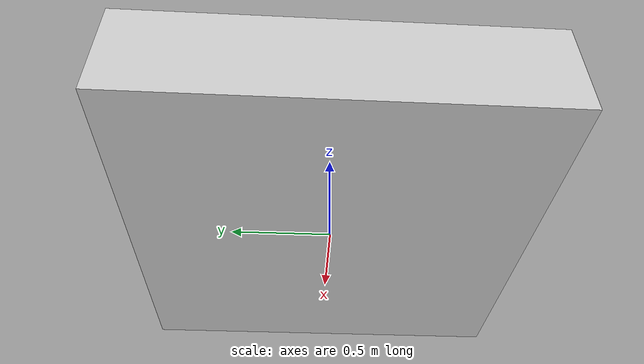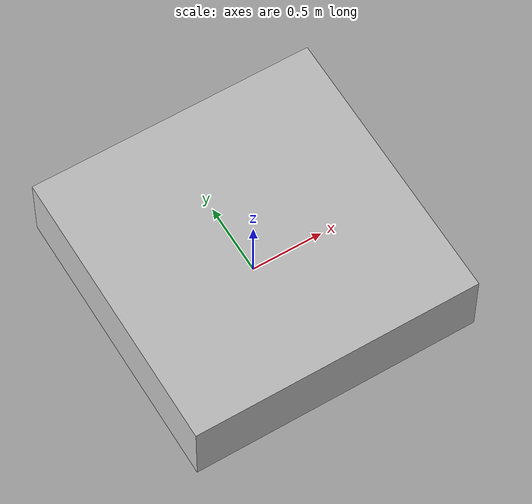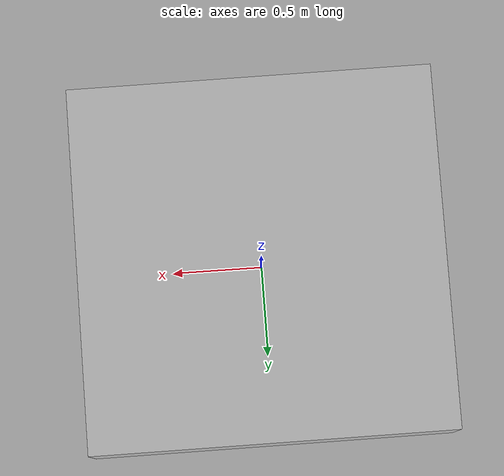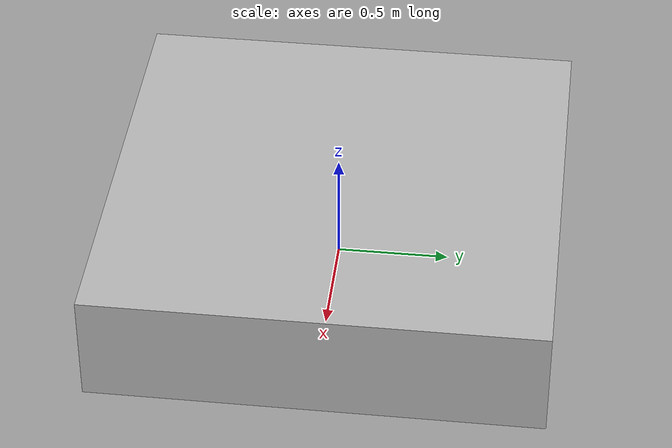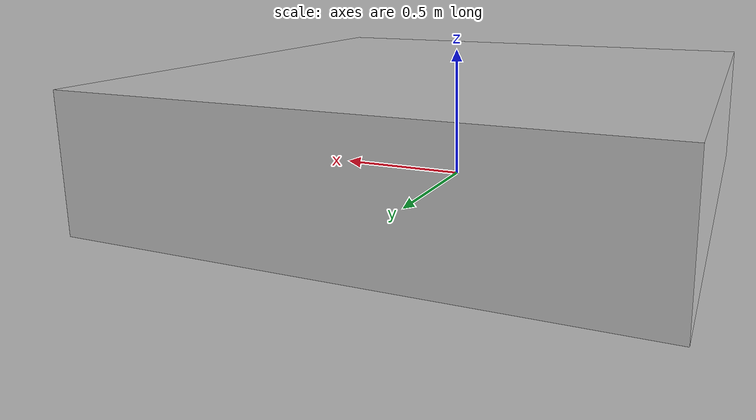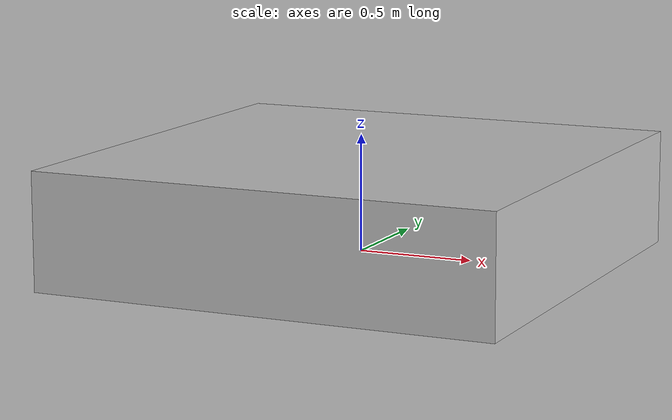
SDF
<?xml version="1.0" ?>
<sdf version="1.5">
  <model name="QR_Code">
    <link name="link">
      <pose>0 0 0.182466 0 0 0</pose>
      <inertial>
        <mass>5.0</mass>
        <inertia>
          <ixx>1.76375</ixx>
          <ixy>0</ixy>
          <ixz>0</ixz>
          <iyy>1.76375</iyy>
          <iyz>0</iyz>
          <izz>3.32</izz>
        </inertia>
      </inertial>
      <collision name="collision">
        <geometry>
          <mesh>
            <uri>model://test/meshes/qr_code.dae</uri>
          </mesh>
        </geometry>
      </collision>
      <visual name="visual">
        <geometry>
          <mesh>
            <uri>model://test/meshes/qr_code.dae</uri>
          </mesh>
        </geometry>
      </visual>
    </link>
  </model>
</sdf>
